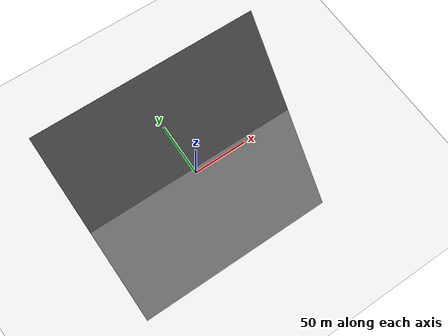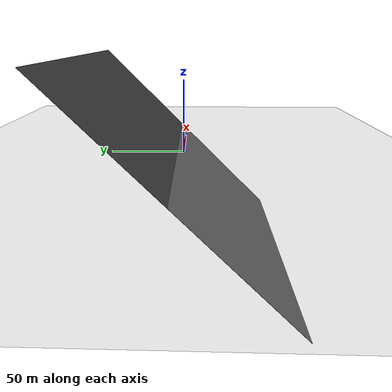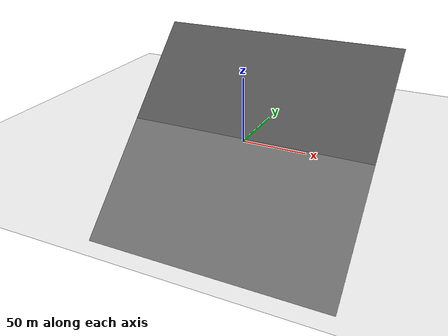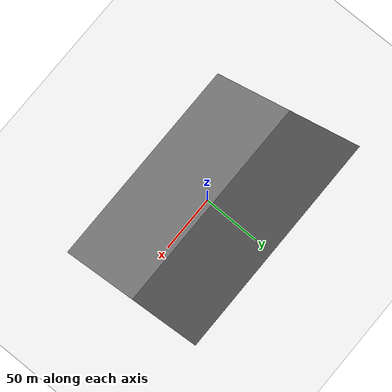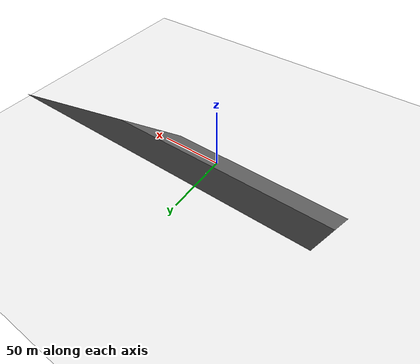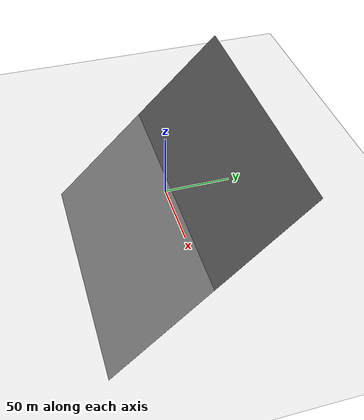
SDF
<?xml version="1.0" ?>
<sdf version="1.5">
  <world name="default">
    <!-- A global light source -->
    <include>
      <uri>model://sun</uri>
    </include>
    <!-- A ground plane -->
    <model name="sloped_plane">
      <static>true</static>
      <link name="links">
        <pose>0.0 0.0 -5.0 0.785398 0 0</pose>
        <collision name="collision">
          <geometry>
            <box>
              <size>200 200 .1</size>
            </box>
          </geometry>
        </collision>
        <visual name="visual">
          <cast_shadows>false</cast_shadows>
          <geometry>
            <box>
              <size>200 200 .1</size>
            </box>
          </geometry>
          <material>
            <script>
              <uri>model://asphalt_plane/materials/scripts</uri>
              <uri>model://asphalt_plane/materials/textures</uri>
              <name>vrc/asphalt</name>
            </script>
          </material>
        </visual>
      </link>    </model>
    <include>
      <uri>model://asphalt_plane</uri>
    </include>
    <physics name='default_physics' default='0' type='ode'>
      <gravity>0 0 -9.8066</gravity>
      <ode>
        <solver>
          <type>quick</type>
          <iters>10</iters>
          <sor>1.3</sor>
          <use_dynamic_moi_rescaling>0</use_dynamic_moi_rescaling>
        </solver>
        <constraints>
          <cfm>0</cfm>
          <erp>0.2</erp>
          <contact_max_correcting_vel>100</contact_max_correcting_vel>
          <contact_surface_layer>0.001</contact_surface_layer>
        </constraints>
      </ode>
      <max_step_size>0.004</max_step_size>
      <real_time_factor>1</real_time_factor>
      <real_time_update_rate>250</real_time_update_rate>
      <magnetic_field>6.0e-6 2.3e-5 -4.2e-5</magnetic_field>
    </physics>
  </world>
</sdf>
